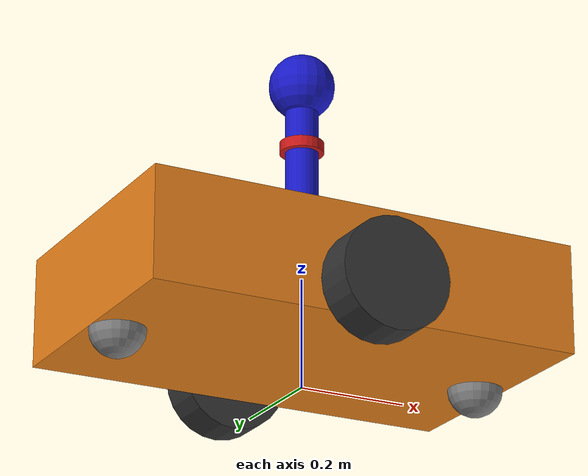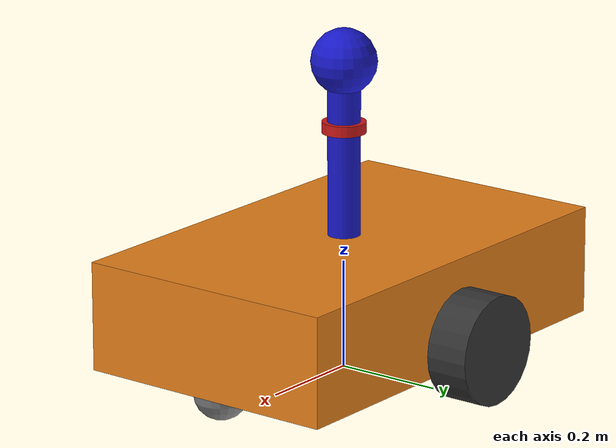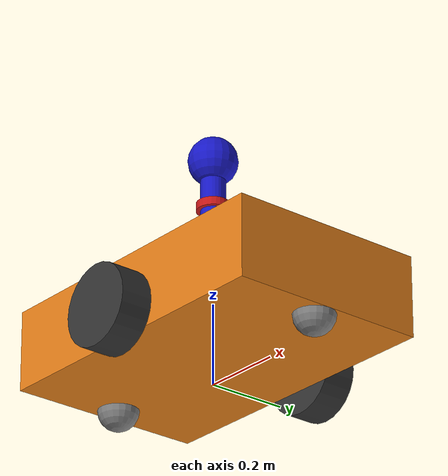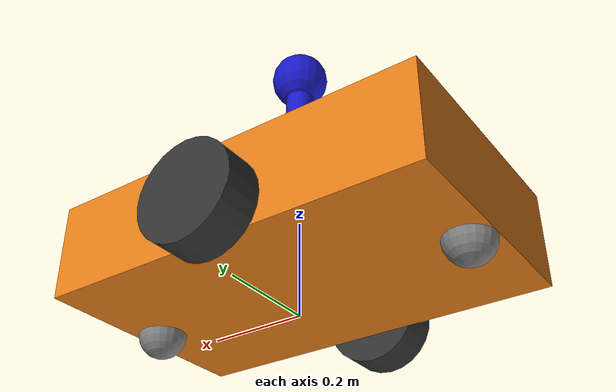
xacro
<?xml version="1.0"?>
<robot xmlns:xacro="http://www.ros.org/wiki/xacro" name="sitebot">

  <!-- Robot parameters -->
  <xacro:property name="wheel_radius" value="0.1"/>
  <xacro:property name="wheel_width" value="0.08"/>
  <xacro:property name="wheel_separation" value="0.6"/>
  <xacro:property name="chassis_length" value="0.8"/>
  <xacro:property name="chassis_width" value="0.5"/>
  <xacro:property name="chassis_height" value="0.2"/>

  <!-- Base footprint (ground projection) -->
  <link name="base_footprint"/>

  <!-- Base link (chassis) -->
  <link name="base_link">
    <visual>
      <geometry>
        <box size="${chassis_length} ${chassis_width} ${chassis_height}"/>
      </geometry>
      <material name="orange">
        <color rgba="0.9 0.5 0.1 1"/>
      </material>
    </visual>
    <collision>
      <geometry>
        <box size="${chassis_length} ${chassis_width} ${chassis_height}"/>
      </geometry>
    </collision>
    <inertial>
      <mass value="50"/>
      <inertia ixx="2" ixy="0" ixz="0" iyy="2" iyz="0" izz="1"/>
    </inertial>
  </link>

  <joint name="base_footprint_joint" type="fixed">
    <parent link="base_footprint"/>
    <child link="base_link"/>
    <origin xyz="0 0 0.15" rpy="0 0 0"/>
  </joint>

  <!-- Sensor mast -->
  <link name="sensor_mast">
    <visual>
      <origin xyz="0 0 0.15"/>
      <geometry>
        <cylinder radius="0.03" length="0.3"/>
      </geometry>
      <material name="blue">
        <color rgba="0.1 0.1 0.8 1"/>
      </material>
    </visual>
  </link>

  <joint name="mast_joint" type="fixed">
    <parent link="base_link"/>
    <child link="sensor_mast"/>
    <origin xyz="0 0 0.1" rpy="0 0 0"/>
  </joint>

  <!-- Sensor head -->
  <link name="sensor_head">
    <visual>
      <geometry>
        <sphere radius="0.06"/>
      </geometry>
      <material name="blue"/>
    </visual>
  </link>

  <joint name="sensor_head_joint" type="fixed">
    <parent link="sensor_mast"/>
    <child link="sensor_head"/>
    <origin xyz="0 0 0.32" rpy="0 0 0"/>
  </joint>

  <!-- Laser/Lidar frame for Nav2 -->
  <link name="laser_frame">
    <visual>
      <geometry>
        <cylinder radius="0.04" length="0.02"/>
      </geometry>
      <material name="red">
        <color rgba="0.8 0.1 0.1 1"/>
      </material>
    </visual>
  </link>

  <joint name="laser_joint" type="fixed">
    <parent link="base_link"/>
    <child link="laser_frame"/>
    <origin xyz="0 0 0.30" rpy="0 0 0"/>
  </joint>

  <!-- Left wheel -->
  <link name="left_wheel">
    <visual>
      <geometry>
        <cylinder radius="${wheel_radius}" length="${wheel_width}"/>
      </geometry>
      <material name="black">
        <color rgba="0.2 0.2 0.2 1"/>
      </material>
    </visual>
    <collision>
      <geometry>
        <cylinder radius="${wheel_radius}" length="${wheel_width}"/>
      </geometry>
    </collision>
    <inertial>
      <mass value="2"/>
      <inertia ixx="0.02" ixy="0" ixz="0" iyy="0.04" iyz="0" izz="0.02"/>
    </inertial>
  </link>

  <joint name="left_wheel_joint" type="continuous">
    <parent link="base_link"/>
    <child link="left_wheel"/>
    <origin xyz="0 ${wheel_separation/2} -0.05" rpy="${-pi/2} 0 0"/>
    <axis xyz="0 0 1"/>
  </joint>

  <!-- Right wheel -->
  <link name="right_wheel">
    <visual>
      <geometry>
        <cylinder radius="${wheel_radius}" length="${wheel_width}"/>
      </geometry>
      <material name="black"/>
    </visual>
    <collision>
      <geometry>
        <cylinder radius="${wheel_radius}" length="${wheel_width}"/>
      </geometry>
    </collision>
    <inertial>
      <mass value="2"/>
      <inertia ixx="0.02" ixy="0" ixz="0" iyy="0.04" iyz="0" izz="0.02"/>
    </inertial>
  </link>

  <joint name="right_wheel_joint" type="continuous">
    <parent link="base_link"/>
    <child link="right_wheel"/>
    <origin xyz="0 ${-wheel_separation/2} -0.05" rpy="${-pi/2} 0 0"/>
    <axis xyz="0 0 1"/>
  </joint>

  <!-- Front caster -->
  <link name="front_caster">
    <visual>
      <geometry>
        <sphere radius="0.05"/>
      </geometry>
      <material name="gray">
        <color rgba="0.5 0.5 0.5 1"/>
      </material>
    </visual>
    <collision>
      <geometry>
        <sphere radius="0.05"/>
      </geometry>
    </collision>
    <inertial>
      <mass value="0.5"/>
      <inertia ixx="0.001" ixy="0" ixz="0" iyy="0.001" iyz="0" izz="0.001"/>
    </inertial>
  </link>

  <joint name="front_caster_joint" type="fixed">
    <parent link="base_link"/>
    <child link="front_caster"/>
    <origin xyz="0.35 0 -0.10" rpy="0 0 0"/>
  </joint>

  <!-- Rear caster -->
  <link name="rear_caster">
    <visual>
      <geometry>
        <sphere radius="0.05"/>
      </geometry>
      <material name="gray"/>
    </visual>
    <collision>
      <geometry>
        <sphere radius="0.05"/>
      </geometry>
    </collision>
    <inertial>
      <mass value="0.5"/>
      <inertia ixx="0.001" ixy="0" ixz="0" iyy="0.001" iyz="0" izz="0.001"/>
    </inertial>
  </link>

  <joint name="rear_caster_joint" type="fixed">
    <parent link="base_link"/>
    <child link="rear_caster"/>
    <origin xyz="-0.35 0 -0.10" rpy="0 0 0"/>
  </joint>

  <!-- ros2_control hardware interface -->
  <ros2_control name="mujoco_ros2_control" type="system">
    <hardware>
      <plugin>mujoco_ros2_control/MujocoSystem</plugin>
      <param name="mujoco_model">/models/sitebot.xml</param>
    </hardware>
    <joint name="left_wheel_joint">
      <command_interface name="velocity">
        <param name="min">-20</param>
        <param name="max">20</param>
      </command_interface>
      <state_interface name="position"/>
      <state_interface name="velocity"/>
    </joint>
    <joint name="right_wheel_joint">
      <command_interface name="velocity">
        <param name="min">-20</param>
        <param name="max">20</param>
      </command_interface>
      <state_interface name="position"/>
      <state_interface name="velocity"/>
    </joint>
  </ros2_control>

</robot>
